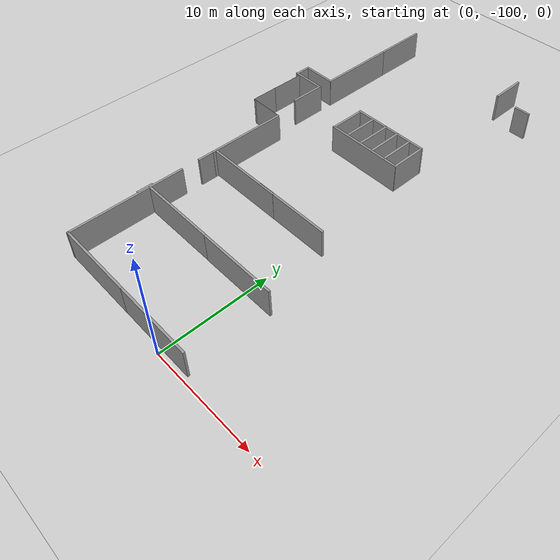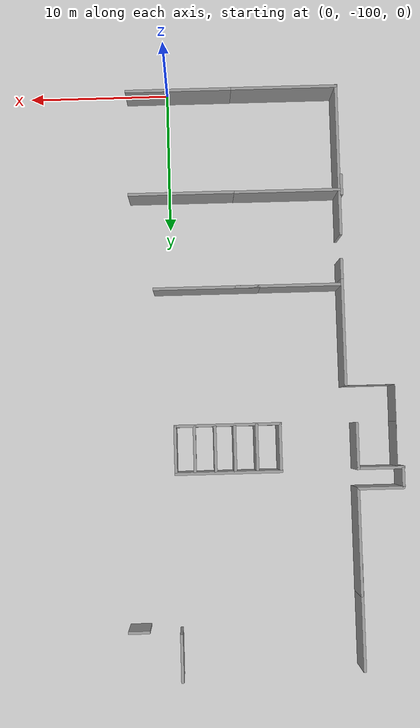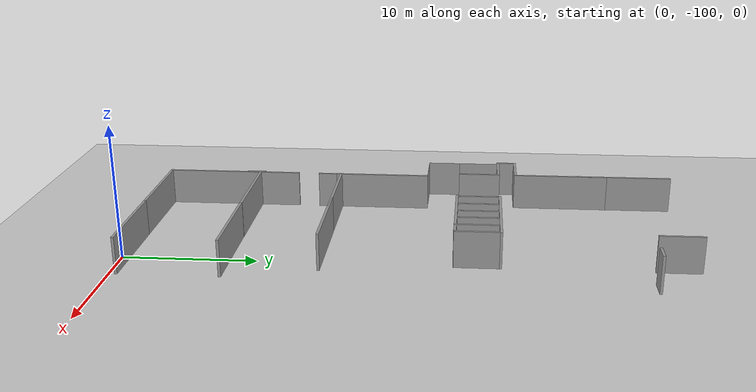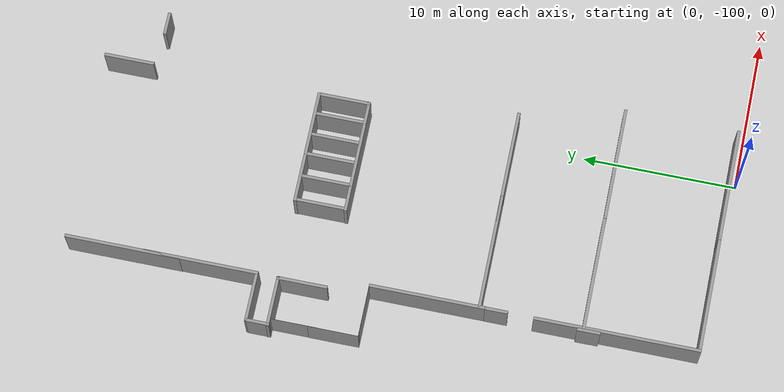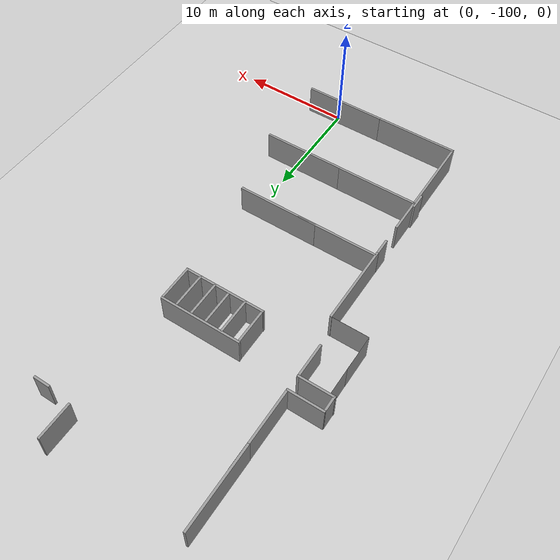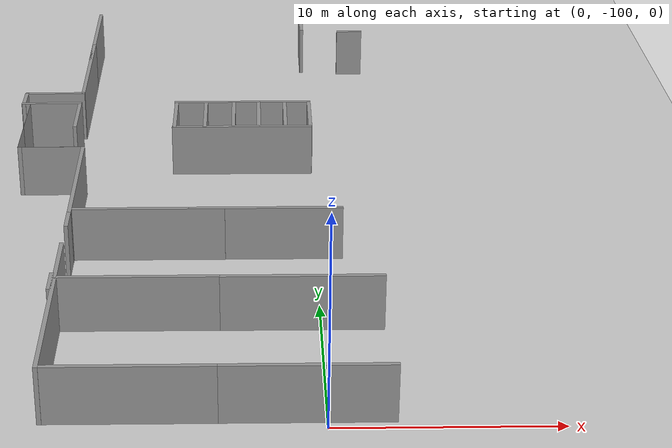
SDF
<sdf version="1.7">
 <world name="default">
  <model name="ground_plane">
   <static>1</static>
   <link name="link">
    <collision name="collision">
     <geometry><plane><normal>0 0 1</normal><size>100 100</size></plane></geometry>
     <surface>
      <contact><collide_bitmask>65535</collide_bitmask></contact>
      <friction><ode><mu>100</mu><mu2>50</mu2></ode></friction>
     </surface>
    </collision>
    <visual name="visual">
     <cast_shadows>0</cast_shadows>
     <geometry><plane><normal>0 0 1</normal><size>100 100</size></plane></geometry>
     <material>
      <script><uri>file://media/materials/scripts/gazebo.material</uri><name>Gazebo/Grey</name></script>
     </material>
    </visual>
   </link>
  </model>
  <model name="grey_wall_clone_2_clone_2_clone_1_clone_2">
   <static>1</static>
   <link name="link">
    <pose>0 0 1.4 0 -0 0</pose>
    <collision name="collision"><geometry><box><size>7.5 0.2 2.8</size></box></geometry></collision>
    <visual name="visual">
     <cast_shadows>0</cast_shadows>
     <geometry><box><size>7.5 0.2 2.8</size></box></geometry>
     <material>
      <script>
       <uri>model://grey_wall/materials/scripts</uri>
       <uri>model://grey_wall/materials/textures</uri>
       <name>vrc/grey_wall</name>
      </script>
     </material>
    </visual>
   </link>
   <pose>-12.5964 -62.2968 0 0 0 -1.5708</pose>
  </model>
  <model name="grey_wall_clone_2_clone_2_clone_1_clone_2_clone">
   <static>1</static>
   <link name="link">
    <pose>0 0 1.4 0 -0 0</pose>
    <collision name="collision"><geometry><box><size>7.5 0.2 2.8</size></box></geometry></collision>
    <visual name="visual">
     <cast_shadows>0</cast_shadows>
     <geometry><box><size>7.5 0.2 2.8</size></box></geometry>
     <material>
      <script>
       <uri>model://grey_wall/materials/scripts</uri>
       <uri>model://grey_wall/materials/textures</uri>
       <name>vrc/grey_wall</name>
      </script>
     </material>
    </visual>
   </link>
   <pose>-12.5827 -67.424 0 0 0 -1.5708</pose>
  </model>
  <model name="grey_wall_clone_0_clone_0_clone_clone_1_clone_0_clone">
   <static>1</static>
   <link name="link">
    <pose>0 0 1.4 0 -0 0</pose>
    <collision name="collision"><geometry><box><size>7.5 0.2 2.8</size></box></geometry></collision>
    <visual name="visual">
     <cast_shadows>0</cast_shadows>
     <geometry><box><size>7.5 0.2 2.8</size></box></geometry>
     <material>
      <script>
       <uri>model://grey_wall/materials/scripts</uri>
       <uri>model://grey_wall/materials/textures</uri>
       <name>vrc/grey_wall</name>
      </script>
     </material>
    </visual>
   </link>
   <pose>-3.66144 -72.4087 0 0 -0 0</pose>
  </model>
  <model name="grey_wall_clone_0_clone_0_clone_clone_1_clone_0_clone_0">
   <static>1</static>
   <link name="link">
    <pose>0 0 1.4 0 -0 0</pose>
    <collision name="collision"><geometry><box><size>7.5 0.2 2.8</size></box></geometry></collision>
    <visual name="visual">
     <cast_shadows>0</cast_shadows>
     <geometry><box><size>7.5 0.2 2.8</size></box></geometry>
     <material>
      <script>
       <uri>model://grey_wall/materials/scripts</uri>
       <uri>model://grey_wall/materials/textures</uri>
       <name>vrc/grey_wall</name>
      </script>
     </material>
    </visual>
   </link>
   <pose>-3.67003 -75.7146 0 0 -0 0</pose>
  </model>
  <model name="half_slim_grey_wall_clone_clone_0">
   <link name="link">
    <pose>0 0 1.4 0 -0 0</pose>
    <inertial>
     <mass>1</mass>
     <inertia><ixx>1</ixx><ixy>0</ixy><ixz>0</ixz><iyy>1</iyy><iyz>0</iyz><izz>1</izz></inertia>
    </inertial>
    <visual name="visual">
     <cast_shadows>0</cast_shadows>
     <geometry><box><size>3.3 0.0001 2.8</size></box></geometry>
     <material>
      <script>
       <uri>model://grey_wall/materials/scripts</uri>
       <uri>model://grey_wall/materials/textures</uri>
       <name>vrc/grey_wall</name>
      </script>
      <shader type="pixel"><normal_map>__default__</normal_map></shader>
      <ambient>1 1 1 1</ambient>
      <diffuse>1 1 1 1</diffuse>
      <specular>0 0 0 1</specular>
      <emissive>0 0 0 1</emissive>
     </material>
    </visual>
    <collision name="collision">
     <geometry><box><size>3.3 0.2 2.8</size></box></geometry>
     <surface>
      <friction>
       <ode><mu>1</mu><mu2>1</mu2><fdir1>0 0 0</fdir1><slip1>0</slip1><slip2>0</slip2></ode>
       <torsional>
        <coefficient>1</coefficient>
        <patch_radius>0</patch_radius>
        <surface_radius>0</surface_radius>
        <use_patch_radius>1</use_patch_radius>
        <ode><slip>0</slip></ode>
       </torsional>
      </friction>
      <bounce><restitution_coefficient>0</restitution_coefficient><threshold>1e+06</threshold></bounce>
      <contact>
       <collide_without_contact>0</collide_without_contact>
       <collide_without_contact_bitmask>1</collide_without_contact_bitmask>
       <collide_bitmask>1</collide_bitmask>
       <ode>
        <soft_cfm>0</soft_cfm>
        <soft_erp>0.2</soft_erp>
        <kp>1e+13</kp>
        <kd>1</kd>
        <max_vel>0.01</max_vel>
        <min_depth>0</min_depth>
       </ode>
       <bullet>
        <split_impulse>1</split_impulse>
        <split_impulse_penetration_threshold>-0.01</split_impulse_penetration_threshold>
        <soft_cfm>0</soft_cfm>
        <soft_erp>0.2</soft_erp>
        <kp>1e+13</kp>
        <kd>1</kd>
       </bullet>
      </contact>
     </surface>
    </collision>
   </link>
   <static>1</static>
   <pose>-15.3614 -74.0364 0 0 0 -1.5708</pose>
  </model>
  <model name="half_slim_grey_wall_clone_clone_1">
   <link name="link">
    <pose>0 0 1.4 0 -0 0</pose>
    <inertial>
     <mass>1</mass>
     <inertia><ixx>1</ixx><ixy>0</ixy><ixz>0</ixz><iyy>1</iyy><iyz>0</iyz><izz>1</izz></inertia>
    </inertial>
    <visual name="visual">
     <cast_shadows>0</cast_shadows>
     <geometry><box><size>3.3 0.0001 2.8</size></box></geometry>
     <material>
      <script>
       <uri>model://grey_wall/materials/scripts</uri>
       <uri>model://grey_wall/materials/textures</uri>
       <name>vrc/grey_wall</name>
      </script>
      <shader type="pixel"><normal_map>__default__</normal_map></shader>
      <ambient>1 1 1 1</ambient>
      <diffuse>1 1 1 1</diffuse>
      <specular>0 0 0 1</specular>
      <emissive>0 0 0 1</emissive>
     </material>
    </visual>
    <collision name="collision">
     <geometry><box><size>3.3 0.2 2.8</size></box></geometry>
     <surface>
      <friction>
       <ode><mu>1</mu><mu2>1</mu2><fdir1>0 0 0</fdir1><slip1>0</slip1><slip2>0</slip2></ode>
       <torsional>
        <coefficient>1</coefficient>
        <patch_radius>0</patch_radius>
        <surface_radius>0</surface_radius>
        <use_patch_radius>1</use_patch_radius>
        <ode><slip>0</slip></ode>
       </torsional>
      </friction>
      <bounce><restitution_coefficient>0</restitution_coefficient><threshold>1e+06</threshold></bounce>
      <contact>
       <collide_without_contact>0</collide_without_contact>
       <collide_without_contact_bitmask>1</collide_without_contact_bitmask>
       <collide_bitmask>1</collide_bitmask>
       <ode>
        <soft_cfm>0</soft_cfm>
        <soft_erp>0.2</soft_erp>
        <kp>1e+13</kp>
        <kd>1</kd>
        <max_vel>0.01</max_vel>
        <min_depth>0</min_depth>
       </ode>
       <bullet>
        <split_impulse>1</split_impulse>
        <split_impulse_penetration_threshold>-0.01</split_impulse_penetration_threshold>
        <soft_cfm>0</soft_cfm>
        <soft_erp>0.2</soft_erp>
        <kp>1e+13</kp>
        <kd>1</kd>
       </bullet>
      </contact>
     </surface>
    </collision>
   </link>
   <static>1</static>
   <pose>-15.3705 -76.5972 0 0 0 -1.5708</pose>
  </model>
  <model name="half_slim_grey_wall_clone_1">
   <link name="link">
    <pose>0 0 1.4 0 -0 0</pose>
    <inertial>
     <mass>1</mass>
     <inertia><ixx>1</ixx><ixy>0</ixy><ixz>0</ixz><iyy>1</iyy><iyz>0</iyz><izz>1</izz></inertia>
    </inertial>
    <visual name="visual">
     <cast_shadows>0</cast_shadows>
     <geometry><box><size>3.3 0.0001 2.8</size></box></geometry>
     <material>
      <script>
       <uri>model://grey_wall/materials/scripts</uri>
       <uri>model://grey_wall/materials/textures</uri>
       <name>vrc/grey_wall</name>
      </script>
      <shader type="pixel"><normal_map>__default__</normal_map></shader>
      <ambient>1 1 1 1</ambient>
      <diffuse>1 1 1 1</diffuse>
      <specular>0 0 0 1</specular>
      <emissive>0 0 0 1</emissive>
     </material>
    </visual>
    <collision name="collision">
     <geometry><box><size>3.3 0.2 2.8</size></box></geometry>
     <surface>
      <friction>
       <ode><mu>1</mu><mu2>1</mu2><fdir1>0 0 0</fdir1><slip1>0</slip1><slip2>0</slip2></ode>
       <torsional>
        <coefficient>1</coefficient>
        <patch_radius>0</patch_radius>
        <surface_radius>0</surface_radius>
        <use_patch_radius>1</use_patch_radius>
        <ode><slip>0</slip></ode>
       </torsional>
      </friction>
      <bounce><restitution_coefficient>0</restitution_coefficient><threshold>1e+06</threshold></bounce>
      <contact>
       <collide_without_contact>0</collide_without_contact>
       <collide_without_contact_bitmask>1</collide_without_contact_bitmask>
       <collide_bitmask>1</collide_bitmask>
       <ode>
        <soft_cfm>0</soft_cfm>
        <soft_erp>0.2</soft_erp>
        <kp>1e+13</kp>
        <kd>1</kd>
        <max_vel>0.01</max_vel>
        <min_depth>0</min_depth>
       </ode>
       <bullet>
        <split_impulse>1</split_impulse>
        <split_impulse_penetration_threshold>-0.01</split_impulse_penetration_threshold>
        <soft_cfm>0</soft_cfm>
        <soft_erp>0.2</soft_erp>
        <kp>1e+13</kp>
        <kd>1</kd>
       </bullet>
      </contact>
     </surface>
    </collision>
   </link>
   <static>1</static>
   <pose>-13.7289 -78.238 0 0 -0 0</pose>
  </model>
  <model name="fixed_half_clone_8_clone">
   <link name="link">
    <pose>0 0 1.4 0 -0 0</pose>
    <inertial>
     <mass>1</mass>
     <inertia><ixx>1</ixx><ixy>0</ixy><ixz>0</ixz><iyy>1</iyy><iyz>0</iyz><izz>1</izz></inertia>
    </inertial>
    <visual name="visual">
     <cast_shadows>0</cast_shadows>
     <geometry><box><size>3.3 0.2 2.8</size></box></geometry>
     <material>
      <script>
       <uri>model://grey_wall/materials/scripts</uri>
       <uri>model://grey_wall/materials/textures</uri>
       <name>vrc/grey_wall</name>
      </script>
      <shader type="pixel"><normal_map>__default__</normal_map></shader>
      <ambient>1 1 1 1</ambient>
      <diffuse>1 1 1 1</diffuse>
      <specular>0 0 0 1</specular>
      <emissive>0 0 0 1</emissive>
     </material>
    </visual>
    <collision name="collision">
     <geometry><box><size>3.3 0.2 2.8</size></box></geometry>
     <surface>
      <friction>
       <ode><mu>1</mu><mu2>1</mu2><fdir1>0 0 0</fdir1><slip1>0</slip1><slip2>0</slip2></ode>
       <torsional>
        <coefficient>1</coefficient>
        <patch_radius>0</patch_radius>
        <surface_radius>0</surface_radius>
        <use_patch_radius>1</use_patch_radius>
        <ode><slip>0</slip></ode>
       </torsional>
      </friction>
      <bounce><restitution_coefficient>0</restitution_coefficient><threshold>1e+06</threshold></bounce>
      <contact>
       <collide_without_contact>0</collide_without_contact>
       <collide_without_contact_bitmask>1</collide_without_contact_bitmask>
       <collide_bitmask>1</collide_bitmask>
       <ode>
        <soft_cfm>0</soft_cfm>
        <soft_erp>0.2</soft_erp>
        <kp>1e+13</kp>
        <kd>1</kd>
        <max_vel>0.01</max_vel>
        <min_depth>0</min_depth>
       </ode>
       <bullet>
        <split_impulse>1</split_impulse>
        <split_impulse_penetration_threshold>-0.01</split_impulse_penetration_threshold>
        <soft_cfm>0</soft_cfm>
        <soft_erp>0.2</soft_erp>
        <kp>1e+13</kp>
        <kd>1</kd>
       </bullet>
      </contact>
     </surface>
    </collision>
   </link>
   <static>1</static>
   <pose>-0.097116 -59.7945 0 0 0 -1.5708</pose>
  </model>
  <model name="half_wall_clone_0_clone_clone_clone_clone_clone_2">
   <link name="link">
    <pose>0 0 1.4 0 -0 0</pose>
    <inertial>
     <mass>1</mass>
     <inertia><ixx>1</ixx><ixy>0</ixy><ixz>0</ixz><iyy>1</iyy><iyz>0</iyz><izz>1</izz></inertia>
    </inertial>
    <visual name="visual">
     <cast_shadows>0</cast_shadows>
     <geometry><box><size>1.5 0.2 2.8</size></box></geometry>
     <material>
      <script>
       <uri>model://grey_wall/materials/scripts</uri>
       <uri>model://grey_wall/materials/textures</uri>
       <name>vrc/grey_wall</name>
      </script>
      <shader type="pixel"><normal_map>__default__</normal_map></shader>
      <ambient>1 1 1 1</ambient>
      <diffuse>1 1 1 1</diffuse>
      <specular>0 0 0 1</specular>
      <emissive>0 0 0 1</emissive>
     </material>
    </visual>
    <collision name="collision">
     <geometry><box><size>1.5 0.2 2.8</size></box></geometry>
     <surface>
      <friction>
       <ode><mu>1</mu><mu2>1</mu2><fdir1>0 0 0</fdir1><slip1>0</slip1><slip2>0</slip2></ode>
       <torsional>
        <coefficient>1</coefficient>
        <patch_radius>0</patch_radius>
        <surface_radius>0</surface_radius>
        <use_patch_radius>1</use_patch_radius>
        <ode><slip>0</slip></ode>
       </torsional>
      </friction>
      <bounce><restitution_coefficient>0</restitution_coefficient><threshold>1e+06</threshold></bounce>
      <contact>
       <collide_without_contact>0</collide_without_contact>
       <collide_without_contact_bitmask>1</collide_without_contact_bitmask>
       <collide_bitmask>1</collide_bitmask>
       <ode>
        <soft_cfm>0</soft_cfm>
        <soft_erp>0.2</soft_erp>
        <kp>1e+13</kp>
        <kd>1</kd>
        <max_vel>0.01</max_vel>
        <min_depth>0</min_depth>
       </ode>
       <bullet>
        <split_impulse>1</split_impulse>
        <split_impulse_penetration_threshold>-0.01</split_impulse_penetration_threshold>
        <soft_cfm>0</soft_cfm>
        <soft_erp>0.2</soft_erp>
        <kp>1e+13</kp>
        <kd>1</kd>
       </bullet>
      </contact>
     </surface>
    </collision>
   </link>
   <static>1</static>
   <pose>2.8055 -61.6425 0 0 -0 3.14159</pose>
  </model>
  <model name="fixed_half_clone_8_clone_clone_0">
   <link name="link">
    <pose>0 0 1.4 0 -0 0</pose>
    <inertial>
     <mass>1</mass>
     <inertia><ixx>1</ixx><ixy>0</ixy><ixz>0</ixz><iyy>1</iyy><iyz>0</iyz><izz>1</izz></inertia>
    </inertial>
    <visual name="visual">
     <cast_shadows>0</cast_shadows>
     <geometry><box><size>3.3 0.2 2.8</size></box></geometry>
     <material>
      <script>
       <uri>model://grey_wall/materials/scripts</uri>
       <uri>model://grey_wall/materials/textures</uri>
       <name>vrc/grey_wall</name>
      </script>
      <shader type="pixel"><normal_map>__default__</normal_map></shader>
      <ambient>1 1 1 1</ambient>
      <diffuse>1 1 1 1</diffuse>
      <specular>0 0 0 1</specular>
      <emissive>0 0 0 1</emissive>
     </material>
    </visual>
    <collision name="collision">
     <geometry><box><size>3.3 0.2 2.8</size></box></geometry>
     <surface>
      <friction>
       <ode><mu>1</mu><mu2>1</mu2><fdir1>0 0 0</fdir1><slip1>0</slip1><slip2>0</slip2></ode>
       <torsional>
        <coefficient>1</coefficient>
        <patch_radius>0</patch_radius>
        <surface_radius>0</surface_radius>
        <use_patch_radius>1</use_patch_radius>
        <ode><slip>0</slip></ode>
       </torsional>
      </friction>
      <bounce><restitution_coefficient>0</restitution_coefficient><threshold>1e+06</threshold></bounce>
      <contact>
       <collide_without_contact>0</collide_without_contact>
       <collide_without_contact_bitmask>1</collide_without_contact_bitmask>
       <collide_bitmask>1</collide_bitmask>
       <ode>
        <soft_cfm>0</soft_cfm>
        <soft_erp>0.2</soft_erp>
        <kp>1e+13</kp>
        <kd>1</kd>
        <max_vel>0.01</max_vel>
        <min_depth>0</min_depth>
       </ode>
       <bullet>
        <split_impulse>1</split_impulse>
        <split_impulse_penetration_threshold>-0.01</split_impulse_penetration_threshold>
        <soft_cfm>0</soft_cfm>
        <soft_erp>0.2</soft_erp>
        <kp>1e+13</kp>
        <kd>1</kd>
       </bullet>
      </contact>
     </surface>
    </collision>
   </link>
   <static>1</static>
   <pose>0.002616 -74.1411 0 0 0 -1.5708</pose>
  </model>
  <model name="fixed_half_clone_8_clone_clone_1">
   <link name="link">
    <pose>0 0 1.4 0 -0 0</pose>
    <inertial>
     <mass>1</mass>
     <inertia><ixx>1</ixx><ixy>0</ixy><ixz>0</ixz><iyy>1</iyy><iyz>0</iyz><izz>1</izz></inertia>
    </inertial>
    <visual name="visual">
     <cast_shadows>0</cast_shadows>
     <geometry><box><size>3.3 0.2 2.8</size></box></geometry>
     <material>
      <script>
       <uri>model://grey_wall/materials/scripts</uri>
       <uri>model://grey_wall/materials/textures</uri>
       <name>vrc/grey_wall</name>
      </script>
      <shader type="pixel"><normal_map>__default__</normal_map></shader>
      <ambient>1 1 1 1</ambient>
      <diffuse>1 1 1 1</diffuse>
      <specular>0 0 0 1</specular>
      <emissive>0 0 0 1</emissive>
     </material>
    </visual>
    <collision name="collision">
     <geometry><box><size>3.3 0.2 2.8</size></box></geometry>
     <surface>
      <friction>
       <ode><mu>1</mu><mu2>1</mu2><fdir1>0 0 0</fdir1><slip1>0</slip1><slip2>0</slip2></ode>
       <torsional>
        <coefficient>1</coefficient>
        <patch_radius>0</patch_radius>
        <surface_radius>0</surface_radius>
        <use_patch_radius>1</use_patch_radius>
        <ode><slip>0</slip></ode>
       </torsional>
      </friction>
      <bounce><restitution_coefficient>0</restitution_coefficient><threshold>1e+06</threshold></bounce>
      <contact>
       <collide_without_contact>0</collide_without_contact>
       <collide_without_contact_bitmask>1</collide_without_contact_bitmask>
       <collide_bitmask>1</collide_bitmask>
       <ode>
        <soft_cfm>0</soft_cfm>
        <soft_erp>0.2</soft_erp>
        <kp>1e+13</kp>
        <kd>1</kd>
        <max_vel>0.01</max_vel>
        <min_depth>0</min_depth>
       </ode>
       <bullet>
        <split_impulse>1</split_impulse>
        <split_impulse_penetration_threshold>-0.01</split_impulse_penetration_threshold>
        <soft_cfm>0</soft_cfm>
        <soft_erp>0.2</soft_erp>
        <kp>1e+13</kp>
        <kd>1</kd>
       </bullet>
      </contact>
     </surface>
    </collision>
   </link>
   <static>1</static>
   <pose>-7.28845 -74.1568 0 0 0 -1.5708</pose>
  </model>
  <model name="fixed_half_clone_8_clone_clone_2">
   <link name="link">
    <pose>0 0 1.4 0 -0 0</pose>
    <inertial>
     <mass>1</mass>
     <inertia><ixx>1</ixx><ixy>0</ixy><ixz>0</ixz><iyy>1</iyy><iyz>0</iyz><izz>1</izz></inertia>
    </inertial>
    <visual name="visual">
     <cast_shadows>0</cast_shadows>
     <geometry><box><size>3.3 0.2 2.8</size></box></geometry>
     <material>
      <script>
       <uri>model://grey_wall/materials/scripts</uri>
       <uri>model://grey_wall/materials/textures</uri>
       <name>vrc/grey_wall</name>
      </script>
      <shader type="pixel"><normal_map>__default__</normal_map></shader>
      <ambient>1 1 1 1</ambient>
      <diffuse>1 1 1 1</diffuse>
      <specular>0 0 0 1</specular>
      <emissive>0 0 0 1</emissive>
     </material>
    </visual>
    <collision name="collision">
     <geometry><box><size>3.3 0.2 2.8</size></box></geometry>
     <surface>
      <friction>
       <ode><mu>1</mu><mu2>1</mu2><fdir1>0 0 0</fdir1><slip1>0</slip1><slip2>0</slip2></ode>
       <torsional>
        <coefficient>1</coefficient>
        <patch_radius>0</patch_radius>
        <surface_radius>0</surface_radius>
        <use_patch_radius>1</use_patch_radius>
        <ode><slip>0</slip></ode>
       </torsional>
      </friction>
      <bounce><restitution_coefficient>0</restitution_coefficient><threshold>1e+06</threshold></bounce>
      <contact>
       <collide_without_contact>0</collide_without_contact>
       <collide_without_contact_bitmask>1</collide_without_contact_bitmask>
       <collide_bitmask>1</collide_bitmask>
       <ode>
        <soft_cfm>0</soft_cfm>
        <soft_erp>0.2</soft_erp>
        <kp>1e+13</kp>
        <kd>1</kd>
        <max_vel>0.01</max_vel>
        <min_depth>0</min_depth>
       </ode>
       <bullet>
        <split_impulse>1</split_impulse>
        <split_impulse_penetration_threshold>-0.01</split_impulse_penetration_threshold>
        <soft_cfm>0</soft_cfm>
        <soft_erp>0.2</soft_erp>
        <kp>1e+13</kp>
        <kd>1</kd>
       </bullet>
      </contact>
     </surface>
    </collision>
   </link>
   <static>1</static>
   <pose>-1.33046 -74.1367 0 0 0 -1.5708</pose>
  </model>
  <model name="fixed_half_clone_8_clone_clone_3">
   <link name="link">
    <pose>0 0 1.4 0 -0 0</pose>
    <inertial>
     <mass>1</mass>
     <inertia><ixx>1</ixx><ixy>0</ixy><ixz>0</ixz><iyy>1</iyy><iyz>0</iyz><izz>1</izz></inertia>
    </inertial>
    <visual name="visual">
     <cast_shadows>0</cast_shadows>
     <geometry><box><size>3.3 0.2 2.8</size></box></geometry>
     <material>
      <script>
       <uri>model://grey_wall/materials/scripts</uri>
       <uri>model://grey_wall/materials/textures</uri>
       <name>vrc/grey_wall</name>
      </script>
      <shader type="pixel"><normal_map>__default__</normal_map></shader>
      <ambient>1 1 1 1</ambient>
      <diffuse>1 1 1 1</diffuse>
      <specular>0 0 0 1</specular>
      <emissive>0 0 0 1</emissive>
     </material>
    </visual>
    <collision name="collision">
     <geometry><box><size>3.3 0.2 2.8</size></box></geometry>
     <surface>
      <friction>
       <ode><mu>1</mu><mu2>1</mu2><fdir1>0 0 0</fdir1><slip1>0</slip1><slip2>0</slip2></ode>
       <torsional>
        <coefficient>1</coefficient>
        <patch_radius>0</patch_radius>
        <surface_radius>0</surface_radius>
        <use_patch_radius>1</use_patch_radius>
        <ode><slip>0</slip></ode>
       </torsional>
      </friction>
      <bounce><restitution_coefficient>0</restitution_coefficient><threshold>1e+06</threshold></bounce>
      <contact>
       <collide_without_contact>0</collide_without_contact>
       <collide_without_contact_bitmask>1</collide_without_contact_bitmask>
       <collide_bitmask>1</collide_bitmask>
       <ode>
        <soft_cfm>0</soft_cfm>
        <soft_erp>0.2</soft_erp>
        <kp>1e+13</kp>
        <kd>1</kd>
        <max_vel>0.01</max_vel>
        <min_depth>0</min_depth>
       </ode>
       <bullet>
        <split_impulse>1</split_impulse>
        <split_impulse_penetration_threshold>-0.01</split_impulse_penetration_threshold>
        <soft_cfm>0</soft_cfm>
        <soft_erp>0.2</soft_erp>
        <kp>1e+13</kp>
        <kd>1</kd>
       </bullet>
      </contact>
     </surface>
    </collision>
   </link>
   <static>1</static>
   <pose>-2.76498 -74.0474 0 0 0 -1.5708</pose>
  </model>
  <model name="fixed_half_clone_8_clone_clone_4">
   <link name="link">
    <pose>0 0 1.4 0 -0 0</pose>
    <inertial>
     <mass>1</mass>
     <inertia><ixx>1</ixx><ixy>0</ixy><ixz>0</ixz><iyy>1</iyy><iyz>0</iyz><izz>1</izz></inertia>
    </inertial>
    <visual name="visual">
     <cast_shadows>0</cast_shadows>
     <geometry><box><size>3.3 0.2 2.8</size></box></geometry>
     <material>
      <script>
       <uri>model://grey_wall/materials/scripts</uri>
       <uri>model://grey_wall/materials/textures</uri>
       <name>vrc/grey_wall</name>
      </script>
      <shader type="pixel"><normal_map>__default__</normal_map></shader>
      <ambient>1 1 1 1</ambient>
      <diffuse>1 1 1 1</diffuse>
      <specular>0 0 0 1</specular>
      <emissive>0 0 0 1</emissive>
     </material>
    </visual>
    <collision name="collision">
     <geometry><box><size>3.3 0.2 2.8</size></box></geometry>
     <surface>
      <friction>
       <ode><mu>1</mu><mu2>1</mu2><fdir1>0 0 0</fdir1><slip1>0</slip1><slip2>0</slip2></ode>
       <torsional>
        <coefficient>1</coefficient>
        <patch_radius>0</patch_radius>
        <surface_radius>0</surface_radius>
        <use_patch_radius>1</use_patch_radius>
        <ode><slip>0</slip></ode>
       </torsional>
      </friction>
      <bounce><restitution_coefficient>0</restitution_coefficient><threshold>1e+06</threshold></bounce>
      <contact>
       <collide_without_contact>0</collide_without_contact>
       <collide_without_contact_bitmask>1</collide_without_contact_bitmask>
       <collide_bitmask>1</collide_bitmask>
       <ode>
        <soft_cfm>0</soft_cfm>
        <soft_erp>0.2</soft_erp>
        <kp>1e+13</kp>
        <kd>1</kd>
        <max_vel>0.01</max_vel>
        <min_depth>0</min_depth>
       </ode>
       <bullet>
        <split_impulse>1</split_impulse>
        <split_impulse_penetration_threshold>-0.01</split_impulse_penetration_threshold>
        <soft_cfm>0</soft_cfm>
        <soft_erp>0.2</soft_erp>
        <kp>1e+13</kp>
        <kd>1</kd>
       </bullet>
      </contact>
     </surface>
    </collision>
   </link>
   <static>1</static>
   <pose>-4.13248 -74.0272 0 0 0 -1.5708</pose>
  </model>
  <model name="fixed_half_clone_8_clone_clone_5">
   <link name="link">
    <pose>0 0 1.4 0 -0 0</pose>
    <inertial>
     <mass>1</mass>
     <inertia><ixx>1</ixx><ixy>0</ixy><ixz>0</ixz><iyy>1</iyy><iyz>0</iyz><izz>1</izz></inertia>
    </inertial>
    <visual name="visual">
     <cast_shadows>0</cast_shadows>
     <geometry><box><size>3.3 0.2 2.8</size></box></geometry>
     <material>
      <script>
       <uri>model://grey_wall/materials/scripts</uri>
       <uri>model://grey_wall/materials/textures</uri>
       <name>vrc/grey_wall</name>
      </script>
      <shader type="pixel"><normal_map>__default__</normal_map></shader>
      <ambient>1 1 1 1</ambient>
      <diffuse>1 1 1 1</diffuse>
      <specular>0 0 0 1</specular>
      <emissive>0 0 0 1</emissive>
     </material>
    </visual>
    <collision name="collision">
     <geometry><box><size>3.3 0.2 2.8</size></box></geometry>
     <surface>
      <friction>
       <ode><mu>1</mu><mu2>1</mu2><fdir1>0 0 0</fdir1><slip1>0</slip1><slip2>0</slip2></ode>
       <torsional>
        <coefficient>1</coefficient>
        <patch_radius>0</patch_radius>
        <surface_radius>0</surface_radius>
        <use_patch_radius>1</use_patch_radius>
        <ode><slip>0</slip></ode>
       </torsional>
      </friction>
      <bounce><restitution_coefficient>0</restitution_coefficient><threshold>1e+06</threshold></bounce>
      <contact>
       <collide_without_contact>0</collide_without_contact>
       <collide_without_contact_bitmask>1</collide_without_contact_bitmask>
       <collide_bitmask>1</collide_bitmask>
       <ode>
        <soft_cfm>0</soft_cfm>
        <soft_erp>0.2</soft_erp>
        <kp>1e+13</kp>
        <kd>1</kd>
        <max_vel>0.01</max_vel>
        <min_depth>0</min_depth>
       </ode>
       <bullet>
        <split_impulse>1</split_impulse>
        <split_impulse_penetration_threshold>-0.01</split_impulse_penetration_threshold>
        <soft_cfm>0</soft_cfm>
        <soft_erp>0.2</soft_erp>
        <kp>1e+13</kp>
        <kd>1</kd>
       </bullet>
      </contact>
     </surface>
    </collision>
   </link>
   <static>1</static>
   <pose>-5.66134 -74.1165 0 0 0 -1.5708</pose>
  </model>
  <model name="fixed_half_clone_8_clone_clone_6">
   <link name="link">
    <pose>0 0 1.4 0 -0 0</pose>
    <inertial>
     <mass>1</mass>
     <inertia><ixx>1</ixx><ixy>0</ixy><ixz>0</ixz><iyy>1</iyy><iyz>0</iyz><izz>1</izz></inertia>
    </inertial>
    <visual name="visual">
     <cast_shadows>0</cast_shadows>
     <geometry><box><size>3.3 0.2 2.8</size></box></geometry>
     <material>
      <script>
       <uri>model://grey_wall/materials/scripts</uri>
       <uri>model://grey_wall/materials/textures</uri>
       <name>vrc/grey_wall</name>
      </script>
      <shader type="pixel"><normal_map>__default__</normal_map></shader>
      <ambient>1 1 1 1</ambient>
      <diffuse>1 1 1 1</diffuse>
      <specular>0 0 0 1</specular>
      <emissive>0 0 0 1</emissive>
     </material>
    </visual>
    <collision name="collision">
     <geometry><box><size>3.3 0.2 2.8</size></box></geometry>
     <surface>
      <friction>
       <ode><mu>1</mu><mu2>1</mu2><fdir1>0 0 0</fdir1><slip1>0</slip1><slip2>0</slip2></ode>
       <torsional>
        <coefficient>1</coefficient>
        <patch_radius>0</patch_radius>
        <surface_radius>0</surface_radius>
        <use_patch_radius>1</use_patch_radius>
        <ode><slip>0</slip></ode>
       </torsional>
      </friction>
      <bounce><restitution_coefficient>0</restitution_coefficient><threshold>1e+06</threshold></bounce>
      <contact>
       <collide_without_contact>0</collide_without_contact>
       <collide_without_contact_bitmask>1</collide_without_contact_bitmask>
       <collide_bitmask>1</collide_bitmask>
       <ode>
        <soft_cfm>0</soft_cfm>
        <soft_erp>0.2</soft_erp>
        <kp>1e+13</kp>
        <kd>1</kd>
        <max_vel>0.01</max_vel>
        <min_depth>0</min_depth>
       </ode>
       <bullet>
        <split_impulse>1</split_impulse>
        <split_impulse_penetration_threshold>-0.01</split_impulse_penetration_threshold>
        <soft_cfm>0</soft_cfm>
        <soft_erp>0.2</soft_erp>
        <kp>1e+13</kp>
        <kd>1</kd>
       </bullet>
      </contact>
     </surface>
    </collision>
   </link>
   <static>1</static>
   <pose>-12.6367 -74.0193 0 0 0 -1.5708</pose>
  </model>
  <model name="half_wall_clone_0_clone_clone_clone_6">
   <link name="link">
    <pose>0 0 1.4 0 -0 0</pose>
    <inertial>
     <mass>1</mass>
     <inertia><ixx>1</ixx><ixy>0</ixy><ixz>0</ixz><iyy>1</iyy><iyz>0</iyz><izz>1</izz></inertia>
    </inertial>
    <visual name="visual">
     <cast_shadows>0</cast_shadows>
     <geometry><box><size>1.5 0.2 2.8</size></box></geometry>
     <material>
      <script>
       <uri>model://grey_wall/materials/scripts</uri>
       <uri>model://grey_wall/materials/textures</uri>
       <name>vrc/grey_wall</name>
      </script>
      <shader type="pixel"><normal_map>__default__</normal_map></shader>
      <ambient>1 1 1 1</ambient>
      <diffuse>1 1 1 1</diffuse>
      <specular>0 0 0 1</specular>
      <emissive>0 0 0 1</emissive>
     </material>
    </visual>
    <collision name="collision">
     <geometry><box><size>1.5 0.2 2.8</size></box></geometry>
     <surface>
      <friction>
       <ode><mu>1</mu><mu2>1</mu2><fdir1>0 0 0</fdir1><slip1>0</slip1><slip2>0</slip2></ode>
       <torsional>
        <coefficient>1</coefficient>
        <patch_radius>0</patch_radius>
        <surface_radius>0</surface_radius>
        <use_patch_radius>1</use_patch_radius>
        <ode><slip>0</slip></ode>
       </torsional>
      </friction>
      <bounce><restitution_coefficient>0</restitution_coefficient><threshold>1e+06</threshold></bounce>
      <contact>
       <collide_without_contact>0</collide_without_contact>
       <collide_without_contact_bitmask>1</collide_without_contact_bitmask>
       <collide_bitmask>1</collide_bitmask>
       <ode>
        <soft_cfm>0</soft_cfm>
        <soft_erp>0.2</soft_erp>
        <kp>1e+13</kp>
        <kd>1</kd>
        <max_vel>0.01</max_vel>
        <min_depth>0</min_depth>
       </ode>
       <bullet>
        <split_impulse>1</split_impulse>
        <split_impulse_penetration_threshold>-0.01</split_impulse_penetration_threshold>
        <soft_cfm>0</soft_cfm>
        <soft_erp>0.2</soft_erp>
        <kp>1e+13</kp>
        <kd>1</kd>
       </bullet>
      </contact>
     </surface>
    </collision>
   </link>
   <static>1</static>
   <pose>-15.733 -71.8331 0 0 0 -1.5708</pose>
  </model>
  <model name="fixed_half_clone_18_clone">
   <link name="link">
    <pose>0 0 1.4 0 -0 0</pose>
    <inertial>
     <mass>1</mass>
     <inertia><ixx>1</ixx><ixy>0</ixy><ixz>0</ixz><iyy>1</iyy><iyz>0</iyz><izz>1</izz></inertia>
    </inertial>
    <visual name="visual">
     <cast_shadows>0</cast_shadows>
     <geometry><box><size>3.3 0.2 2.8</size></box></geometry>
     <material>
      <script>
       <uri>model://grey_wall/materials/scripts</uri>
       <uri>model://grey_wall/materials/textures</uri>
       <name>vrc/grey_wall</name>
      </script>
      <shader type="pixel"><normal_map>__default__</normal_map></shader>
      <ambient>1 1 1 1</ambient>
      <diffuse>1 1 1 1</diffuse>
      <specular>0 0 0 1</specular>
      <emissive>0 0 0 1</emissive>
     </material>
    </visual>
    <collision name="collision">
     <geometry><box><size>3.3 0.2 2.8</size></box></geometry>
     <surface>
      <friction>
       <ode><mu>1</mu><mu2>1</mu2><fdir1>0 0 0</fdir1><slip1>0</slip1><slip2>0</slip2></ode>
       <torsional>
        <coefficient>1</coefficient>
        <patch_radius>0</patch_radius>
        <surface_radius>0</surface_radius>
        <use_patch_radius>1</use_patch_radius>
        <ode><slip>0</slip></ode>
       </torsional>
      </friction>
      <bounce><restitution_coefficient>0</restitution_coefficient><threshold>1e+06</threshold></bounce>
      <contact>
       <collide_without_contact>0</collide_without_contact>
       <collide_without_contact_bitmask>1</collide_without_contact_bitmask>
       <collide_bitmask>1</collide_bitmask>
       <ode>
        <soft_cfm>0</soft_cfm>
        <soft_erp>0.2</soft_erp>
        <kp>1e+13</kp>
        <kd>1</kd>
        <max_vel>0.01</max_vel>
        <min_depth>0</min_depth>
       </ode>
       <bullet>
        <split_impulse>1</split_impulse>
        <split_impulse_penetration_threshold>-0.01</split_impulse_penetration_threshold>
        <soft_cfm>0</soft_cfm>
        <soft_erp>0.2</soft_erp>
        <kp>1e+13</kp>
        <kd>1</kd>
       </bullet>
      </contact>
     </surface>
    </collision>
   </link>
   <static>1</static>
   <pose>-14.161 -71.0766 0 0 -0 3.14159</pose>
  </model>
  <model name="fixed_half_clone_18_clone_0">
   <link name="link">
    <pose>0 0 1.4 0 -0 0</pose>
    <inertial>
     <mass>1</mass>
     <inertia><ixx>1</ixx><ixy>0</ixy><ixz>0</ixz><iyy>1</iyy><iyz>0</iyz><izz>1</izz></inertia>
    </inertial>
    <visual name="visual">
     <cast_shadows>0</cast_shadows>
     <geometry><box><size>3.3 0.2 2.8</size></box></geometry>
     <material>
      <script>
       <uri>model://grey_wall/materials/scripts</uri>
       <uri>model://grey_wall/materials/textures</uri>
       <name>vrc/grey_wall</name>
      </script>
      <shader type="pixel"><normal_map>__default__</normal_map></shader>
      <ambient>1 1 1 1</ambient>
      <diffuse>1 1 1 1</diffuse>
      <specular>0 0 0 1</specular>
      <emissive>0 0 0 1</emissive>
     </material>
    </visual>
    <collision name="collision">
     <geometry><box><size>3.3 0.2 2.8</size></box></geometry>
     <surface>
      <friction>
       <ode><mu>1</mu><mu2>1</mu2><fdir1>0 0 0</fdir1><slip1>0</slip1><slip2>0</slip2></ode>
       <torsional>
        <coefficient>1</coefficient>
        <patch_radius>0</patch_radius>
        <surface_radius>0</surface_radius>
        <use_patch_radius>1</use_patch_radius>
        <ode><slip>0</slip></ode>
       </torsional>
      </friction>
      <bounce><restitution_coefficient>0</restitution_coefficient><threshold>1e+06</threshold></bounce>
      <contact>
       <collide_without_contact>0</collide_without_contact>
       <collide_without_contact_bitmask>1</collide_without_contact_bitmask>
       <collide_bitmask>1</collide_bitmask>
       <ode>
        <soft_cfm>0</soft_cfm>
        <soft_erp>0.2</soft_erp>
        <kp>1e+13</kp>
        <kd>1</kd>
        <max_vel>0.01</max_vel>
        <min_depth>0</min_depth>
       </ode>
       <bullet>
        <split_impulse>1</split_impulse>
        <split_impulse_penetration_threshold>-0.01</split_impulse_penetration_threshold>
        <soft_cfm>0</soft_cfm>
        <soft_erp>0.2</soft_erp>
        <kp>1e+13</kp>
        <kd>1</kd>
       </bullet>
      </contact>
     </surface>
    </collision>
   </link>
   <static>1</static>
   <pose>-14.2058 -72.4709 0 0 -0 3.14159</pose>
  </model>
  <model name="grey_wall_clone_1_clone_2_clone_clone_clone_clone_clone_clone_clone_3_clone_0_clone_0_clone_5_clone_2_clone_2_clone_clone_21">
   <static>1</static>
   <link name="link">
    <pose>0 0 1.4 0 -0 0</pose>
    <collision name="collision"><geometry><box><size>7.5 0.2 2.8</size></box></geometry></collision>
    <visual name="visual">
     <cast_shadows>0</cast_shadows>
     <geometry><box><size>7.5 0.2 2.8</size></box></geometry>
     <material>
      <script>
       <uri>model://grey_wall/materials/scripts</uri>
       <uri>model://grey_wall/materials/textures</uri>
       <name>vrc/grey_wall</name>
      </script>
     </material>
    </visual>
   </link>
   <pose>-2.44972 -85.3475 0 0 -0 0</pose>
  </model>
  <model name="grey_wall_clone_1_clone_2_clone_clone_clone_clone_clone_clone_clone_3_clone_0_clone_0_clone_5_clone_2_clone_2_clone_clone_21_clone">
   <static>1</static>
   <link name="link">
    <pose>0 0 1.4 0 -0 0</pose>
    <collision name="collision"><geometry><box><size>7.5 0.2 2.8</size></box></geometry></collision>
    <visual name="visual">
     <cast_shadows>0</cast_shadows>
     <geometry><box><size>7.5 0.2 2.8</size></box></geometry>
     <material>
      <script>
       <uri>model://grey_wall/materials/scripts</uri>
       <uri>model://grey_wall/materials/textures</uri>
       <name>vrc/grey_wall</name>
      </script>
     </material>
    </visual>
   </link>
   <pose>-8.20059 -85.3544 0 0 -0 0</pose>
  </model>
  <model name="grey_wall_clone_2_clone_2_clone_1_clone_2_clone_clone_clone">
   <static>1</static>
   <link name="link">
    <pose>0 0 1.4 0 -0 0</pose>
    <collision name="collision"><geometry><box><size>7.5 0.2 2.8</size></box></geometry></collision>
    <visual name="visual">
     <cast_shadows>0</cast_shadows>
     <geometry><box><size>7.5 0.2 2.8</size></box></geometry>
     <material>
      <script>
       <uri>model://grey_wall/materials/scripts</uri>
       <uri>model://grey_wall/materials/textures</uri>
       <name>vrc/grey_wall</name>
      </script>
     </material>
    </visual>
   </link>
   <pose>-11.963 -81.9772 0 0 0 -1.5708</pose>
  </model>
  <model name="half_slim_grey_wall_clone_1_clone">
   <link name="link">
    <pose>0 0 1.4 0 -0 0</pose>
    <inertial>
     <mass>1</mass>
     <inertia><ixx>1</ixx><ixy>0</ixy><ixz>0</ixz><iyy>1</iyy><iyz>0</iyz><izz>1</izz></inertia>
    </inertial>
    <visual name="visual">
     <cast_shadows>0</cast_shadows>
     <geometry><box><size>3.3 0.0001 2.8</size></box></geometry>
     <material>
      <script>
       <uri>model://grey_wall/materials/scripts</uri>
       <uri>model://grey_wall/materials/textures</uri>
       <name>vrc/grey_wall</name>
      </script>
      <shader type="pixel"><normal_map>__default__</normal_map></shader>
      <ambient>1 1 1 1</ambient>
      <diffuse>1 1 1 1</diffuse>
      <specular>0 0 0 1</specular>
      <emissive>0 0 0 1</emissive>
     </material>
    </visual>
    <collision name="collision">
     <geometry><box><size>3.3 0.2 2.8</size></box></geometry>
     <surface>
      <friction>
       <ode><mu>1</mu><mu2>1</mu2><fdir1>0 0 0</fdir1><slip1>0</slip1><slip2>0</slip2></ode>
       <torsional>
        <coefficient>1</coefficient>
        <patch_radius>0</patch_radius>
        <surface_radius>0</surface_radius>
        <use_patch_radius>1</use_patch_radius>
        <ode><slip>0</slip></ode>
       </torsional>
      </friction>
      <bounce><restitution_coefficient>0</restitution_coefficient><threshold>1e+06</threshold></bounce>
      <contact>
       <collide_without_contact>0</collide_without_contact>
       <collide_without_contact_bitmask>1</collide_without_contact_bitmask>
       <collide_bitmask>1</collide_bitmask>
       <ode>
        <soft_cfm>0</soft_cfm>
        <soft_erp>0.2</soft_erp>
        <kp>1e+13</kp>
        <kd>1</kd>
        <max_vel>0.01</max_vel>
        <min_depth>0</min_depth>
       </ode>
       <bullet>
        <split_impulse>1</split_impulse>
        <split_impulse_penetration_threshold>-0.01</split_impulse_penetration_threshold>
        <soft_cfm>0</soft_cfm>
        <soft_erp>0.2</soft_erp>
        <kp>1e+13</kp>
        <kd>1</kd>
       </bullet>
      </contact>
     </surface>
    </collision>
   </link>
   <static>1</static>
   <pose>-13.5159 -78.2414 0 0 -0 0</pose>
  </model>
  <model name="half_wall_clone_0_clone_clone_clone_6_clone">
   <link name="link">
    <pose>0 0 1.4 0 -0 0</pose>
    <inertial>
     <mass>1</mass>
     <inertia><ixx>1</ixx><ixy>0</ixy><ixz>0</ixz><iyy>1</iyy><iyz>0</iyz><izz>1</izz></inertia>
    </inertial>
    <visual name="visual">
     <cast_shadows>0</cast_shadows>
     <geometry><box><size>1.5 0.2 2.8</size></box></geometry>
     <material>
      <script>
       <uri>model://grey_wall/materials/scripts</uri>
       <uri>model://grey_wall/materials/textures</uri>
       <name>vrc/grey_wall</name>
      </script>
      <shader type="pixel"><normal_map>__default__</normal_map></shader>
      <ambient>1 1 1 1</ambient>
      <diffuse>1 1 1 1</diffuse>
      <specular>0 0 0 1</specular>
      <emissive>0 0 0 1</emissive>
     </material>
    </visual>
    <collision name="collision">
     <geometry><box><size>1.5 0.2 2.8</size></box></geometry>
     <surface>
      <friction>
       <ode><mu>1</mu><mu2>1</mu2><fdir1>0 0 0</fdir1><slip1>0</slip1><slip2>0</slip2></ode>
       <torsional>
        <coefficient>1</coefficient>
        <patch_radius>0</patch_radius>
        <surface_radius>0</surface_radius>
        <use_patch_radius>1</use_patch_radius>
        <ode><slip>0</slip></ode>
       </torsional>
      </friction>
      <bounce><restitution_coefficient>0</restitution_coefficient><threshold>1e+06</threshold></bounce>
      <contact>
       <collide_without_contact>0</collide_without_contact>
       <collide_without_contact_bitmask>1</collide_without_contact_bitmask>
       <collide_bitmask>1</collide_bitmask>
       <ode>
        <soft_cfm>0</soft_cfm>
        <soft_erp>0.2</soft_erp>
        <kp>1e+13</kp>
        <kd>1</kd>
        <max_vel>0.01</max_vel>
        <min_depth>0</min_depth>
       </ode>
       <bullet>
        <split_impulse>1</split_impulse>
        <split_impulse_penetration_threshold>-0.01</split_impulse_penetration_threshold>
        <soft_cfm>0</soft_cfm>
        <soft_erp>0.2</soft_erp>
        <kp>1e+13</kp>
        <kd>1</kd>
       </bullet>
      </contact>
     </surface>
    </collision>
   </link>
   <static>1</static>
   <pose>-11.9683 -86.4434 0 0 0 -1.5708</pose>
  </model>
  <model name="fixed_half_clone_8_clone_clone_6_clone">
   <link name="link">
    <pose>0 0 1.4 0 -0 0</pose>
    <inertial>
     <mass>1</mass>
     <inertia><ixx>1</ixx><ixy>0</ixy><ixz>0</ixz><iyy>1</iyy><iyz>0</iyz><izz>1</izz></inertia>
    </inertial>
    <visual name="visual">
     <cast_shadows>0</cast_shadows>
     <geometry><box><size>3.3 0.2 2.8</size></box></geometry>
     <material>
      <script>
       <uri>model://grey_wall/materials/scripts</uri>
       <uri>model://grey_wall/materials/textures</uri>
       <name>vrc/grey_wall</name>
      </script>
      <shader type="pixel"><normal_map>__default__</normal_map></shader>
      <ambient>1 1 1 1</ambient>
      <diffuse>1 1 1 1</diffuse>
      <specular>0 0 0 1</specular>
      <emissive>0 0 0 1</emissive>
     </material>
    </visual>
    <collision name="collision">
     <geometry><box><size>3.3 0.2 2.8</size></box></geometry>
     <surface>
      <friction>
       <ode><mu>1</mu><mu2>1</mu2><fdir1>0 0 0</fdir1><slip1>0</slip1><slip2>0</slip2></ode>
       <torsional>
        <coefficient>1</coefficient>
        <patch_radius>0</patch_radius>
        <surface_radius>0</surface_radius>
        <use_patch_radius>1</use_patch_radius>
        <ode><slip>0</slip></ode>
       </torsional>
      </friction>
      <bounce><restitution_coefficient>0</restitution_coefficient><threshold>1e+06</threshold></bounce>
      <contact>
       <collide_without_contact>0</collide_without_contact>
       <collide_without_contact_bitmask>1</collide_without_contact_bitmask>
       <collide_bitmask>1</collide_bitmask>
       <ode>
        <soft_cfm>0</soft_cfm>
        <soft_erp>0.2</soft_erp>
        <kp>1e+13</kp>
        <kd>1</kd>
        <max_vel>0.01</max_vel>
        <min_depth>0</min_depth>
       </ode>
       <bullet>
        <split_impulse>1</split_impulse>
        <split_impulse_penetration_threshold>-0.01</split_impulse_penetration_threshold>
        <soft_cfm>0</soft_cfm>
        <soft_erp>0.2</soft_erp>
        <kp>1e+13</kp>
        <kd>1</kd>
       </bullet>
      </contact>
     </surface>
    </collision>
   </link>
   <static>1</static>
   <pose>-11.9906 -90.4905 0 0 0 -1.5708</pose>
  </model>
  <model name="grey_wall_clone_1_clone_2_clone_clone_clone_clone_clone_clone_clone_3_clone_0_clone_0_clone_5_clone_2_clone_2_clone_clone_21_clone_clone">
   <static>1</static>
   <link name="link">
    <pose>0 0 1.4 0 -0 0</pose>
    <collision name="collision"><geometry><box><size>7.5 0.2 2.8</size></box></geometry></collision>
    <visual name="visual">
     <cast_shadows>0</cast_shadows>
     <geometry><box><size>7.5 0.2 2.8</size></box></geometry>
     <material>
      <script>
       <uri>model://grey_wall/materials/scripts</uri>
       <uri>model://grey_wall/materials/textures</uri>
       <name>vrc/grey_wall</name>
      </script>
     </material>
    </visual>
   </link>
   <pose>-8.32267 -92.0663 0 0 -0 0</pose>
  </model>
  <model name="grey_wall_clone_1_clone_2_clone_clone_clone_clone_clone_clone_clone_3_clone_0_clone_0_clone_5_clone_2_clone_2_clone_clone_21_clone_clone_0">
   <static>1</static>
   <link name="link">
    <pose>0 0 1.4 0 -0 0</pose>
    <collision name="collision"><geometry><box><size>7.5 0.2 2.8</size></box></geometry></collision>
    <visual name="visual">
     <cast_shadows>0</cast_shadows>
     <geometry><box><size>7.5 0.2 2.8</size></box></geometry>
     <material>
      <script>
       <uri>model://grey_wall/materials/scripts</uri>
       <uri>model://grey_wall/materials/textures</uri>
       <name>vrc/grey_wall</name>
      </script>
     </material>
    </visual>
   </link>
   <pose>-0.847096 -92.0789 0 0 -0 0</pose>
  </model>
  <model name="grey_wall_clone_2_clone_2_clone_1_clone_2_clone_clone_clone_clone">
   <static>1</static>
   <link name="link">
    <pose>0 0 1.4 0 -0 0</pose>
    <collision name="collision"><geometry><box><size>7.5 0.2 2.8</size></box></geometry></collision>
    <visual name="visual">
     <cast_shadows>0</cast_shadows>
     <geometry><box><size>7.5 0.2 2.8</size></box></geometry>
     <material>
      <script>
       <uri>model://grey_wall/materials/scripts</uri>
       <uri>model://grey_wall/materials/textures</uri>
       <name>vrc/grey_wall</name>
      </script>
     </material>
    </visual>
   </link>
   <pose>-11.9893 -95.8512 0 0 0 -1.5708</pose>
  </model>
  <model name="grey_wall_clone_1_clone_2_clone_clone_clone_clone_clone_clone_clone_3_clone_0_clone_0_clone_5_clone_2_clone_2_clone_clone_21_clone_clone_clone">
   <static>1</static>
   <link name="link">
    <pose>0 0 1.4 0 -0 0</pose>
    <collision name="collision"><geometry><box><size>7.5 0.2 2.8</size></box></geometry></collision>
    <visual name="visual">
     <cast_shadows>0</cast_shadows>
     <geometry><box><size>7.5 0.2 2.8</size></box></geometry>
     <material>
      <script>
       <uri>model://grey_wall/materials/scripts</uri>
       <uri>model://grey_wall/materials/textures</uri>
       <name>vrc/grey_wall</name>
      </script>
     </material>
    </visual>
   </link>
   <pose>-8.30326 -99.4936 0 0 -0 0</pose>
  </model>
  <model name="grey_wall_clone_1_clone_2_clone_clone_clone_clone_clone_clone_clone_3_clone_0_clone_0_clone_5_clone_2_clone_2_clone_clone_21_clone_clone_clone_0">
   <static>1</static>
   <link name="link">
    <pose>0 0 1.4 0 -0 0</pose>
    <collision name="collision"><geometry><box><size>7.5 0.2 2.8</size></box></geometry></collision>
    <visual name="visual">
     <cast_shadows>0</cast_shadows>
     <geometry><box><size>7.5 0.2 2.8</size></box></geometry>
     <material>
      <script>
       <uri>model://grey_wall/materials/scripts</uri>
       <uri>model://grey_wall/materials/textures</uri>
       <name>vrc/grey_wall</name>
      </script>
     </material>
    </visual>
   </link>
   <pose>-0.807794 -99.4877 0 0 -0 0</pose>
  </model>
  <model name="half_wall_clone_0_clone_clone_clone_5_clone">
   <link name="link">
    <pose>0 0 1.4 0 -0 0</pose>
    <inertial>
     <mass>1</mass>
     <inertia><ixx>1</ixx><ixy>0</ixy><ixz>0</ixz><iyy>1</iyy><iyz>0</iyz><izz>1</izz></inertia>
    </inertial>
    <visual name="visual">
     <cast_shadows>0</cast_shadows>
     <geometry><box><size>1.5 0.2 2.8</size></box></geometry>
     <material>
      <script>
       <uri>model://grey_wall/materials/scripts</uri>
       <uri>model://grey_wall/materials/textures</uri>
       <name>vrc/grey_wall</name>
      </script>
      <shader type="pixel"><normal_map>__default__</normal_map></shader>
      <ambient>1 1 1 1</ambient>
      <diffuse>1 1 1 1</diffuse>
      <specular>0 0 0 1</specular>
      <emissive>0 0 0 1</emissive>
     </material>
    </visual>
    <collision name="collision">
     <geometry><box><size>1.5 0.2 2.8</size></box></geometry>
     <surface>
      <friction>
       <ode><mu>1</mu><mu2>1</mu2><fdir1>0 0 0</fdir1><slip1>0</slip1><slip2>0</slip2></ode>
       <torsional>
        <coefficient>1</coefficient>
        <patch_radius>0</patch_radius>
        <surface_radius>0</surface_radius>
        <use_patch_radius>1</use_patch_radius>
        <ode><slip>0</slip></ode>
       </torsional>
      </friction>
      <bounce><restitution_coefficient>0</restitution_coefficient><threshold>1e+06</threshold></bounce>
      <contact>
       <collide_without_contact>0</collide_without_contact>
       <collide_without_contact_bitmask>1</collide_without_contact_bitmask>
       <collide_bitmask>1</collide_bitmask>
       <ode>
        <soft_cfm>0</soft_cfm>
        <soft_erp>0.2</soft_erp>
        <kp>1e+13</kp>
        <kd>1</kd>
        <max_vel>0.01</max_vel>
        <min_depth>0</min_depth>
       </ode>
       <bullet>
        <split_impulse>1</split_impulse>
        <split_impulse_penetration_threshold>-0.01</split_impulse_penetration_threshold>
        <soft_cfm>0</soft_cfm>
        <soft_erp>0.2</soft_erp>
        <kp>1e+13</kp>
        <kd>1</kd>
       </bullet>
      </contact>
     </surface>
    </collision>
   </link>
   <static>1</static>
   <pose>-12.1477 -92.4174 0 0 0 -1.5708</pose>
  </model>
 </world>
</sdf>
